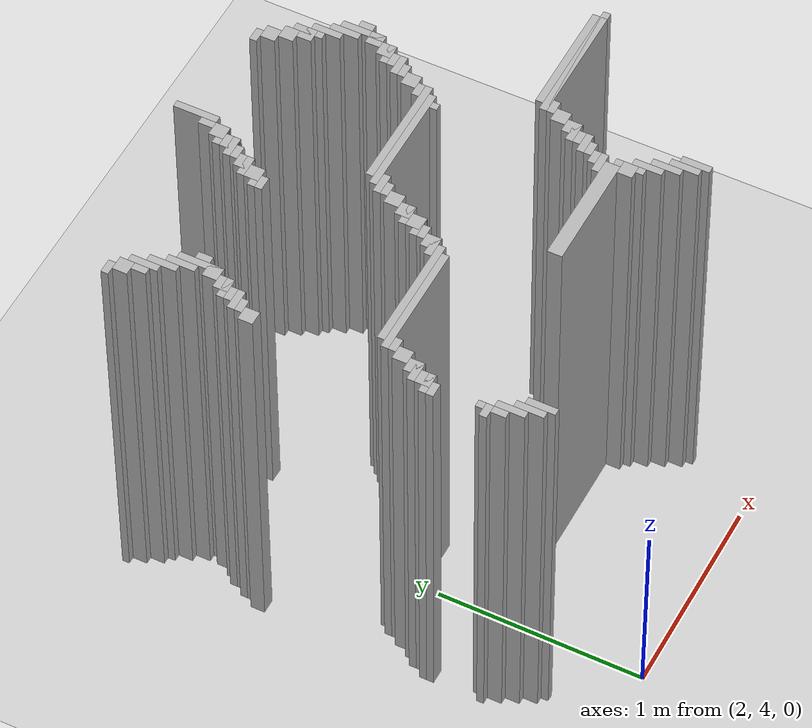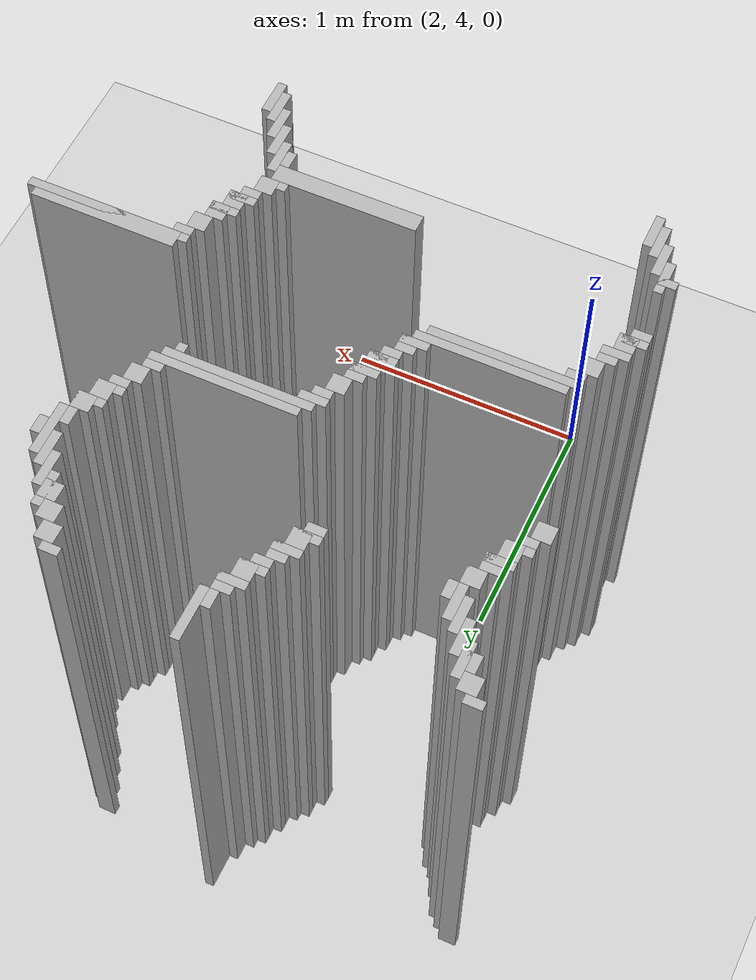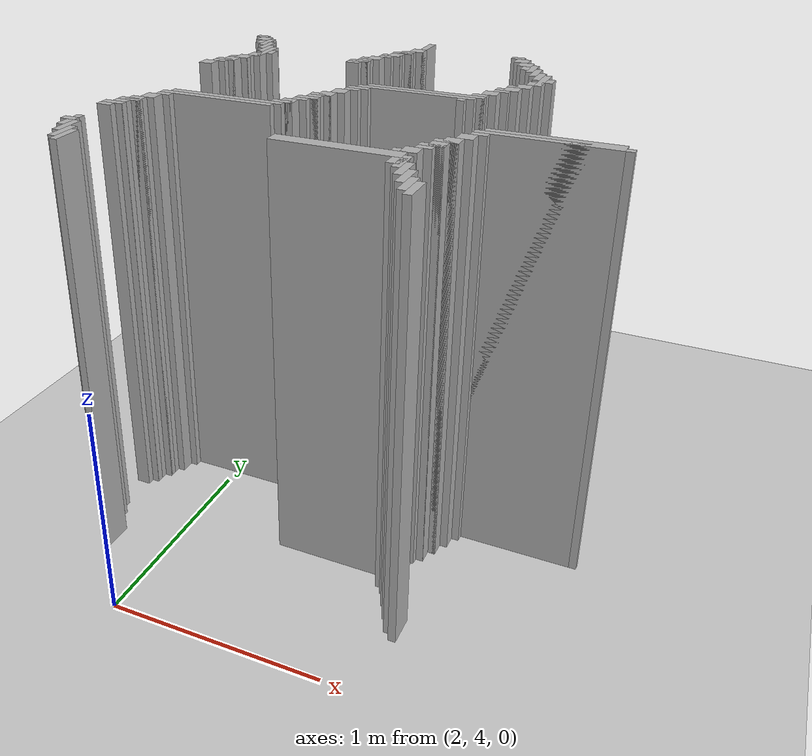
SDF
<sdf version="1.6">
 <world name="slam_world">
  <model name="ground_plane">
   <static>true</static>
   <link name="link">
    <collision name="collision">
     <geometry><plane><normal>0 0 1</normal><size>100 100</size></plane></geometry>
    </collision>
    <visual name="visual">
     <geometry><plane><normal>0 0 1</normal><size>100 100</size></plane></geometry>
     <material>
      <ambient>0.8 0.8 0.8 1</ambient>
      <diffuse>0.8 0.8 0.8 1</diffuse>
      <specular>0.8 0.8 0.8 1</specular>
     </material>
    </visual>
   </link>
  </model>
  <model name="wall_3667">
   <static>true</static>
   <pose>2.488399071925754 6.403712296983758 1.0 0 0 0</pose>
   <link name="link">
    <collision name="collision">
     <geometry><box><size>0.03480278422273782 0.2088167053364269 2.0</size></box></geometry>
    </collision>
    <visual name="visual">
     <geometry><box><size>0.03480278422273782 0.2088167053364269 2.0</size></box></geometry>
     <material><ambient>0.5 0.5 0.5 1</ambient><diffuse>0.7 0.7 0.7 1</diffuse></material>
    </visual>
   </link>
  </model>
  <model name="wall_3703">
   <static>true</static>
   <pose>2.9930394431554523 6.386310904872389 1.0 0 0 0</pose>
   <link name="link">
    <collision name="collision">
     <geometry><box><size>0.06960556844547564 0.03480278422273782 2.0</size></box></geometry>
    </collision>
    <visual name="visual">
     <geometry><box><size>0.06960556844547564 0.03480278422273782 2.0</size></box></geometry>
     <material><ambient>0.5 0.5 0.5 1</ambient><diffuse>0.7 0.7 0.7 1</diffuse></material>
    </visual>
   </link>
  </model>
  <model name="wall_3712">
   <static>true</static>
   <pose>2.470997679814385 6.334106728538282 1.0 0 0 0</pose>
   <link name="link">
    <collision name="collision">
     <geometry><box><size>0.06960556844547564 0.06960556844547564 2.0</size></box></geometry>
    </collision>
    <visual name="visual">
     <geometry><box><size>0.06960556844547564 0.06960556844547564 2.0</size></box></geometry>
     <material><ambient>0.5 0.5 0.5 1</ambient><diffuse>0.7 0.7 0.7 1</diffuse></material>
    </visual>
   </link>
  </model>
  <model name="wall_3713">
   <static>true</static>
   <pose>3.02784222737819 6.334106728538282 1.0 0 0 0</pose>
   <link name="link">
    <collision name="collision">
     <geometry><box><size>0.06960556844547564 0.06960556844547564 2.0</size></box></geometry>
    </collision>
    <visual name="visual">
     <geometry><box><size>0.06960556844547564 0.06960556844547564 2.0</size></box></geometry>
     <material><ambient>0.5 0.5 0.5 1</ambient><diffuse>0.7 0.7 0.7 1</diffuse></material>
    </visual>
   </link>
  </model>
  <model name="wall_3728">
   <static>true</static>
   <pose>1.5661252900232019 6.316705336426914 1.0 0 0 0</pose>
   <link name="link">
    <collision name="collision">
     <geometry><box><size>0.06960556844547564 0.03480278422273782 2.0</size></box></geometry>
    </collision>
    <visual name="visual">
     <geometry><box><size>0.06960556844547564 0.03480278422273782 2.0</size></box></geometry>
     <material><ambient>0.5 0.5 0.5 1</ambient><diffuse>0.7 0.7 0.7 1</diffuse></material>
    </visual>
   </link>
  </model>
  <model name="wall_3738">
   <static>true</static>
   <pose>1.6009280742459395 6.2645011600928076 1.0 0 0 0</pose>
   <link name="link">
    <collision name="collision">
     <geometry><box><size>0.06960556844547564 0.06960556844547564 2.0</size></box></geometry>
    </collision>
    <visual name="visual">
     <geometry><box><size>0.06960556844547564 0.06960556844547564 2.0</size></box></geometry>
     <material><ambient>0.5 0.5 0.5 1</ambient><diffuse>0.7 0.7 0.7 1</diffuse></material>
    </visual>
   </link>
  </model>
  <model name="wall_3739">
   <static>true</static>
   <pose>2.436194895591647 6.2645011600928076 1.0 0 0 0</pose>
   <link name="link">
    <collision name="collision">
     <geometry><box><size>0.06960556844547564 0.06960556844547564 2.0</size></box></geometry>
    </collision>
    <visual name="visual">
     <geometry><box><size>0.06960556844547564 0.06960556844547564 2.0</size></box></geometry>
     <material><ambient>0.5 0.5 0.5 1</ambient><diffuse>0.7 0.7 0.7 1</diffuse></material>
    </visual>
   </link>
  </model>
  <model name="wall_3740">
   <static>true</static>
   <pose>3.062645011600928 6.2645011600928076 1.0 0 0 0</pose>
   <link name="link">
    <collision name="collision">
     <geometry><box><size>0.06960556844547564 0.06960556844547564 2.0</size></box></geometry>
    </collision>
    <visual name="visual">
     <geometry><box><size>0.06960556844547564 0.06960556844547564 2.0</size></box></geometry>
     <material><ambient>0.5 0.5 0.5 1</ambient><diffuse>0.7 0.7 0.7 1</diffuse></material>
    </visual>
   </link>
  </model>
  <model name="wall_3756">
   <static>true</static>
   <pose>1.6531322505800463 6.194895591647332 1.0 0 0 0</pose>
   <link name="link">
    <collision name="collision">
     <geometry><box><size>0.03480278422273782 0.13921113689095127 2.0</size></box></geometry>
    </collision>
    <visual name="visual">
     <geometry><box><size>0.03480278422273782 0.13921113689095127 2.0</size></box></geometry>
     <material><ambient>0.5 0.5 0.5 1</ambient><diffuse>0.7 0.7 0.7 1</diffuse></material>
    </visual>
   </link>
  </model>
  <model name="wall_3757">
   <static>true</static>
   <pose>2.4187935034802783 6.247099767981438 1.0 0 0 0</pose>
   <link name="link">
    <collision name="collision">
     <geometry><box><size>0.10440835266821345 0.03480278422273782 2.0</size></box></geometry>
    </collision>
    <visual name="visual">
     <geometry><box><size>0.10440835266821345 0.03480278422273782 2.0</size></box></geometry>
     <material><ambient>0.5 0.5 0.5 1</ambient><diffuse>0.7 0.7 0.7 1</diffuse></material>
    </visual>
   </link>
  </model>
  <model name="wall_3758">
   <static>true</static>
   <pose>3.1148491879350346 6.194895591647332 1.0 0 0 0</pose>
   <link name="link">
    <collision name="collision">
     <geometry><box><size>0.03480278422273782 0.13921113689095127 2.0</size></box></geometry>
    </collision>
    <visual name="visual">
     <geometry><box><size>0.03480278422273782 0.13921113689095127 2.0</size></box></geometry>
     <material><ambient>0.5 0.5 0.5 1</ambient><diffuse>0.7 0.7 0.7 1</diffuse></material>
    </visual>
   </link>
  </model>
  <model name="wall_3774">
   <static>true</static>
   <pose>1.6357308584686774 6.194895591647332 1.0 0 0 0</pose>
   <link name="link">
    <collision name="collision">
     <geometry><box><size>0.06960556844547564 0.06960556844547564 2.0</size></box></geometry>
    </collision>
    <visual name="visual">
     <geometry><box><size>0.06960556844547564 0.06960556844547564 2.0</size></box></geometry>
     <material><ambient>0.5 0.5 0.5 1</ambient><diffuse>0.7 0.7 0.7 1</diffuse></material>
    </visual>
   </link>
  </model>
  <model name="wall_3775">
   <static>true</static>
   <pose>2.4013921113689096 6.194895591647332 1.0 0 0 0</pose>
   <link name="link">
    <collision name="collision">
     <geometry><box><size>0.06960556844547564 0.06960556844547564 2.0</size></box></geometry>
    </collision>
    <visual name="visual">
     <geometry><box><size>0.06960556844547564 0.06960556844547564 2.0</size></box></geometry>
     <material><ambient>0.5 0.5 0.5 1</ambient><diffuse>0.7 0.7 0.7 1</diffuse></material>
    </visual>
   </link>
  </model>
  <model name="wall_3776">
   <static>true</static>
   <pose>3.097447795823666 6.194895591647332 1.0 0 0 0</pose>
   <link name="link">
    <collision name="collision">
     <geometry><box><size>0.06960556844547564 0.06960556844547564 2.0</size></box></geometry>
    </collision>
    <visual name="visual">
     <geometry><box><size>0.06960556844547564 0.06960556844547564 2.0</size></box></geometry>
     <material><ambient>0.5 0.5 0.5 1</ambient><diffuse>0.7 0.7 0.7 1</diffuse></material>
    </visual>
   </link>
  </model>
  <model name="wall_3792">
   <static>true</static>
   <pose>1.6879350348027842 6.125290023201856 1.0 0 0 0</pose>
   <link name="link">
    <collision name="collision">
     <geometry><box><size>0.03480278422273782 0.13921113689095127 2.0</size></box></geometry>
    </collision>
    <visual name="visual">
     <geometry><box><size>0.03480278422273782 0.13921113689095127 2.0</size></box></geometry>
     <material><ambient>0.5 0.5 0.5 1</ambient><diffuse>0.7 0.7 0.7 1</diffuse></material>
    </visual>
   </link>
  </model>
  <model name="wall_3793">
   <static>true</static>
   <pose>2.3839907192575405 6.177494199535962 1.0 0 0 0</pose>
   <link name="link">
    <collision name="collision">
     <geometry><box><size>0.10440835266821345 0.03480278422273782 2.0</size></box></geometry>
    </collision>
    <visual name="visual">
     <geometry><box><size>0.10440835266821345 0.03480278422273782 2.0</size></box></geometry>
     <material><ambient>0.5 0.5 0.5 1</ambient><diffuse>0.7 0.7 0.7 1</diffuse></material>
    </visual>
   </link>
  </model>
  <model name="wall_3794">
   <static>true</static>
   <pose>3.1496519721577725 6.125290023201856 1.0 0 0 0</pose>
   <link name="link">
    <collision name="collision">
     <geometry><box><size>0.03480278422273782 0.13921113689095127 2.0</size></box></geometry>
    </collision>
    <visual name="visual">
     <geometry><box><size>0.03480278422273782 0.13921113689095127 2.0</size></box></geometry>
     <material><ambient>0.5 0.5 0.5 1</ambient><diffuse>0.7 0.7 0.7 1</diffuse></material>
    </visual>
   </link>
  </model>
  <model name="wall_3809">
   <static>true</static>
   <pose>2.3665893271461718 6.142691415313225 1.0 0 0 0</pose>
   <link name="link">
    <collision name="collision">
     <geometry><box><size>0.06960556844547564 0.03480278422273782 2.0</size></box></geometry>
    </collision>
    <visual name="visual">
     <geometry><box><size>0.06960556844547564 0.03480278422273782 2.0</size></box></geometry>
     <material><ambient>0.5 0.5 0.5 1</ambient><diffuse>0.7 0.7 0.7 1</diffuse></material>
    </visual>
   </link>
  </model>
  <model name="wall_3819">
   <static>true</static>
   <pose>1.722737819025522 6.05568445475638 1.0 0 0 0</pose>
   <link name="link">
    <collision name="collision">
     <geometry><box><size>0.03480278422273782 0.13921113689095127 2.0</size></box></geometry>
    </collision>
    <visual name="visual">
     <geometry><box><size>0.03480278422273782 0.13921113689095127 2.0</size></box></geometry>
     <material><ambient>0.5 0.5 0.5 1</ambient><diffuse>0.7 0.7 0.7 1</diffuse></material>
    </visual>
   </link>
  </model>
  <model name="wall_3820">
   <static>true</static>
   <pose>2.331786542923434 6.090487238979118 1.0 0 0 0</pose>
   <link name="link">
    <collision name="collision">
     <geometry><box><size>0.06960556844547564 0.06960556844547564 2.0</size></box></geometry>
    </collision>
    <visual name="visual">
     <geometry><box><size>0.06960556844547564 0.06960556844547564 2.0</size></box></geometry>
     <material><ambient>0.5 0.5 0.5 1</ambient><diffuse>0.7 0.7 0.7 1</diffuse></material>
    </visual>
   </link>
  </model>
  <model name="wall_3821">
   <static>true</static>
   <pose>3.1844547563805103 6.05568445475638 1.0 0 0 0</pose>
   <link name="link">
    <collision name="collision">
     <geometry><box><size>0.03480278422273782 0.13921113689095127 2.0</size></box></geometry>
    </collision>
    <visual name="visual">
     <geometry><box><size>0.03480278422273782 0.13921113689095127 2.0</size></box></geometry>
     <material><ambient>0.5 0.5 0.5 1</ambient><diffuse>0.7 0.7 0.7 1</diffuse></material>
    </visual>
   </link>
  </model>
  <model name="wall_3837">
   <static>true</static>
   <pose>1.75754060324826 5.986078886310905 1.0 0 0 0</pose>
   <link name="link">
    <collision name="collision">
     <geometry><box><size>0.03480278422273782 0.2088167053364269 2.0</size></box></geometry>
    </collision>
    <visual name="visual">
     <geometry><box><size>0.03480278422273782 0.2088167053364269 2.0</size></box></geometry>
     <material><ambient>0.5 0.5 0.5 1</ambient><diffuse>0.7 0.7 0.7 1</diffuse></material>
    </visual>
   </link>
  </model>
  <model name="wall_3838">
   <static>true</static>
   <pose>2.3143851508120648 6.073085846867749 1.0 0 0 0</pose>
   <link name="link">
    <collision name="collision">
     <geometry><box><size>0.10440835266821345 0.03480278422273782 2.0</size></box></geometry>
    </collision>
    <visual name="visual">
     <geometry><box><size>0.10440835266821345 0.03480278422273782 2.0</size></box></geometry>
     <material><ambient>0.5 0.5 0.5 1</ambient><diffuse>0.7 0.7 0.7 1</diffuse></material>
    </visual>
   </link>
  </model>
  <model name="wall_3839">
   <static>true</static>
   <pose>3.219257540603248 5.986078886310905 1.0 0 0 0</pose>
   <link name="link">
    <collision name="collision">
     <geometry><box><size>0.03480278422273782 0.2088167053364269 2.0</size></box></geometry>
    </collision>
    <visual name="visual">
     <geometry><box><size>0.03480278422273782 0.2088167053364269 2.0</size></box></geometry>
     <material><ambient>0.5 0.5 0.5 1</ambient><diffuse>0.7 0.7 0.7 1</diffuse></material>
    </visual>
   </link>
  </model>
  <model name="wall_3854">
   <static>true</static>
   <pose>2.296983758700696 6.020881670533642 1.0 0 0 0</pose>
   <link name="link">
    <collision name="collision">
     <geometry><box><size>0.06960556844547564 0.06960556844547564 2.0</size></box></geometry>
    </collision>
    <visual name="visual">
     <geometry><box><size>0.06960556844547564 0.06960556844547564 2.0</size></box></geometry>
     <material><ambient>0.5 0.5 0.5 1</ambient><diffuse>0.7 0.7 0.7 1</diffuse></material>
    </visual>
   </link>
  </model>
  <model name="wall_3864">
   <static>true</static>
   <pose>1.7923433874709975 5.986078886310905 1.0 0 0 0</pose>
   <link name="link">
    <collision name="collision">
     <geometry><box><size>0.03480278422273782 0.06960556844547564 2.0</size></box></geometry>
    </collision>
    <visual name="visual">
     <geometry><box><size>0.03480278422273782 0.06960556844547564 2.0</size></box></geometry>
     <material><ambient>0.5 0.5 0.5 1</ambient><diffuse>0.7 0.7 0.7 1</diffuse></material>
    </visual>
   </link>
  </model>
  <model name="wall_3865">
   <static>true</static>
   <pose>2.279582366589327 6.003480278422273 1.0 0 0 0</pose>
   <link name="link">
    <collision name="collision">
     <geometry><box><size>0.10440835266821345 0.03480278422273782 2.0</size></box></geometry>
    </collision>
    <visual name="visual">
     <geometry><box><size>0.10440835266821345 0.03480278422273782 2.0</size></box></geometry>
     <material><ambient>0.5 0.5 0.5 1</ambient><diffuse>0.7 0.7 0.7 1</diffuse></material>
    </visual>
   </link>
  </model>
  <model name="wall_3866">
   <static>true</static>
   <pose>3.254060324825986 5.986078886310905 1.0 0 0 0</pose>
   <link name="link">
    <collision name="collision">
     <geometry><box><size>0.03480278422273782 0.06960556844547564 2.0</size></box></geometry>
    </collision>
    <visual name="visual">
     <geometry><box><size>0.03480278422273782 0.06960556844547564 2.0</size></box></geometry>
     <material><ambient>0.5 0.5 0.5 1</ambient><diffuse>0.7 0.7 0.7 1</diffuse></material>
    </visual>
   </link>
  </model>
  <model name="wall_3878">
   <static>true</static>
   <pose>2.262180974477958 5.968677494199536 1.0 0 0 0</pose>
   <link name="link">
    <collision name="collision">
     <geometry><box><size>0.06960556844547564 0.03480278422273782 2.0</size></box></geometry>
    </collision>
    <visual name="visual">
     <geometry><box><size>0.06960556844547564 0.03480278422273782 2.0</size></box></geometry>
     <material><ambient>0.5 0.5 0.5 1</ambient><diffuse>0.7 0.7 0.7 1</diffuse></material>
    </visual>
   </link>
  </model>
  <model name="wall_3888">
   <static>true</static>
   <pose>1.740139211136891 5.916473317865429 1.0 0 0 0</pose>
   <link name="link">
    <collision name="collision">
     <geometry><box><size>0.06960556844547564 0.06960556844547564 2.0</size></box></geometry>
    </collision>
    <visual name="visual">
     <geometry><box><size>0.06960556844547564 0.06960556844547564 2.0</size></box></geometry>
     <material><ambient>0.5 0.5 0.5 1</ambient><diffuse>0.7 0.7 0.7 1</diffuse></material>
    </visual>
   </link>
  </model>
  <model name="wall_3889">
   <static>true</static>
   <pose>3.201856148491879 5.916473317865429 1.0 0 0 0</pose>
   <link name="link">
    <collision name="collision">
     <geometry><box><size>0.06960556844547564 0.06960556844547564 2.0</size></box></geometry>
    </collision>
    <visual name="visual">
     <geometry><box><size>0.06960556844547564 0.06960556844547564 2.0</size></box></geometry>
     <material><ambient>0.5 0.5 0.5 1</ambient><diffuse>0.7 0.7 0.7 1</diffuse></material>
    </visual>
   </link>
  </model>
  <model name="wall_3904">
   <static>true</static>
   <pose>1.705336426914153 5.846867749419953 1.0 0 0 0</pose>
   <link name="link">
    <collision name="collision">
     <geometry><box><size>0.06960556844547564 0.06960556844547564 2.0</size></box></geometry>
    </collision>
    <visual name="visual">
     <geometry><box><size>0.06960556844547564 0.06960556844547564 2.0</size></box></geometry>
     <material><ambient>0.5 0.5 0.5 1</ambient><diffuse>0.7 0.7 0.7 1</diffuse></material>
    </visual>
   </link>
  </model>
  <model name="wall_3905">
   <static>true</static>
   <pose>3.167053364269141 5.846867749419953 1.0 0 0 0</pose>
   <link name="link">
    <collision name="collision">
     <geometry><box><size>0.06960556844547564 0.06960556844547564 2.0</size></box></geometry>
    </collision>
    <visual name="visual">
     <geometry><box><size>0.06960556844547564 0.06960556844547564 2.0</size></box></geometry>
     <material><ambient>0.5 0.5 0.5 1</ambient><diffuse>0.7 0.7 0.7 1</diffuse></material>
    </visual>
   </link>
  </model>
  <model name="wall_3915">
   <static>true</static>
   <pose>1.6879350348027842 5.8294663573085845 1.0 0 0 0</pose>
   <link name="link">
    <collision name="collision">
     <geometry><box><size>0.10440835266821345 0.03480278422273782 2.0</size></box></geometry>
    </collision>
    <visual name="visual">
     <geometry><box><size>0.10440835266821345 0.03480278422273782 2.0</size></box></geometry>
     <material><ambient>0.5 0.5 0.5 1</ambient><diffuse>0.7 0.7 0.7 1</diffuse></material>
    </visual>
   </link>
  </model>
  <model name="wall_3916">
   <static>true</static>
   <pose>3.1496519721577725 5.8294663573085845 1.0 0 0 0</pose>
   <link name="link">
    <collision name="collision">
     <geometry><box><size>0.10440835266821345 0.03480278422273782 2.0</size></box></geometry>
    </collision>
    <visual name="visual">
     <geometry><box><size>0.10440835266821345 0.03480278422273782 2.0</size></box></geometry>
     <material><ambient>0.5 0.5 0.5 1</ambient><diffuse>0.7 0.7 0.7 1</diffuse></material>
    </visual>
   </link>
  </model>
  <model name="wall_3926">
   <static>true</static>
   <pose>1.6705336426914152 5.7772621809744775 1.0 0 0 0</pose>
   <link name="link">
    <collision name="collision">
     <geometry><box><size>0.06960556844547564 0.06960556844547564 2.0</size></box></geometry>
    </collision>
    <visual name="visual">
     <geometry><box><size>0.06960556844547564 0.06960556844547564 2.0</size></box></geometry>
     <material><ambient>0.5 0.5 0.5 1</ambient><diffuse>0.7 0.7 0.7 1</diffuse></material>
    </visual>
   </link>
  </model>
  <model name="wall_3927">
   <static>true</static>
   <pose>3.1322505800464038 5.7772621809744775 1.0 0 0 0</pose>
   <link name="link">
    <collision name="collision">
     <geometry><box><size>0.06960556844547564 0.06960556844547564 2.0</size></box></geometry>
    </collision>
    <visual name="visual">
     <geometry><box><size>0.06960556844547564 0.06960556844547564 2.0</size></box></geometry>
     <material><ambient>0.5 0.5 0.5 1</ambient><diffuse>0.7 0.7 0.7 1</diffuse></material>
    </visual>
   </link>
  </model>
  <model name="wall_3937">
   <static>true</static>
   <pose>1.6531322505800463 5.759860788863109 1.0 0 0 0</pose>
   <link name="link">
    <collision name="collision">
     <geometry><box><size>0.10440835266821345 0.03480278422273782 2.0</size></box></geometry>
    </collision>
    <visual name="visual">
     <geometry><box><size>0.10440835266821345 0.03480278422273782 2.0</size></box></geometry>
     <material><ambient>0.5 0.5 0.5 1</ambient><diffuse>0.7 0.7 0.7 1</diffuse></material>
    </visual>
   </link>
  </model>
  <model name="wall_3938">
   <static>true</static>
   <pose>3.1148491879350346 5.759860788863109 1.0 0 0 0</pose>
   <link name="link">
    <collision name="collision">
     <geometry><box><size>0.10440835266821345 0.03480278422273782 2.0</size></box></geometry>
    </collision>
    <visual name="visual">
     <geometry><box><size>0.10440835266821345 0.03480278422273782 2.0</size></box></geometry>
     <material><ambient>0.5 0.5 0.5 1</ambient><diffuse>0.7 0.7 0.7 1</diffuse></material>
    </visual>
   </link>
  </model>
  <model name="wall_3948">
   <static>true</static>
   <pose>1.6357308584686774 5.725058004640371 1.0 0 0 0</pose>
   <link name="link">
    <collision name="collision">
     <geometry><box><size>0.06960556844547564 0.03480278422273782 2.0</size></box></geometry>
    </collision>
    <visual name="visual">
     <geometry><box><size>0.06960556844547564 0.03480278422273782 2.0</size></box></geometry>
     <material><ambient>0.5 0.5 0.5 1</ambient><diffuse>0.7 0.7 0.7 1</diffuse></material>
    </visual>
   </link>
  </model>
  <model name="wall_3949">
   <static>true</static>
   <pose>3.097447795823666 5.725058004640371 1.0 0 0 0</pose>
   <link name="link">
    <collision name="collision">
     <geometry><box><size>0.06960556844547564 0.03480278422273782 2.0</size></box></geometry>
    </collision>
    <visual name="visual">
     <geometry><box><size>0.06960556844547564 0.03480278422273782 2.0</size></box></geometry>
     <material><ambient>0.5 0.5 0.5 1</ambient><diffuse>0.7 0.7 0.7 1</diffuse></material>
    </visual>
   </link>
  </model>
  <model name="wall_3957">
   <static>true</static>
   <pose>1.6009280742459395 5.672853828306264 1.0 0 0 0</pose>
   <link name="link">
    <collision name="collision">
     <geometry><box><size>0.06960556844547564 0.06960556844547564 2.0</size></box></geometry>
    </collision>
    <visual name="visual">
     <geometry><box><size>0.06960556844547564 0.06960556844547564 2.0</size></box></geometry>
     <material><ambient>0.5 0.5 0.5 1</ambient><diffuse>0.7 0.7 0.7 1</diffuse></material>
    </visual>
   </link>
  </model>
  <model name="wall_3958">
   <static>true</static>
   <pose>3.062645011600928 5.672853828306264 1.0 0 0 0</pose>
   <link name="link">
    <collision name="collision">
     <geometry><box><size>0.06960556844547564 0.06960556844547564 2.0</size></box></geometry>
    </collision>
    <visual name="visual">
     <geometry><box><size>0.06960556844547564 0.06960556844547564 2.0</size></box></geometry>
     <material><ambient>0.5 0.5 0.5 1</ambient><diffuse>0.7 0.7 0.7 1</diffuse></material>
    </visual>
   </link>
  </model>
  <model name="wall_3969">
   <static>true</static>
   <pose>3.02784222737819 5.603248259860789 1.0 0 0 0</pose>
   <link name="link">
    <collision name="collision">
     <geometry><box><size>0.06960556844547564 0.06960556844547564 2.0</size></box></geometry>
    </collision>
    <visual name="visual">
     <geometry><box><size>0.06960556844547564 0.06960556844547564 2.0</size></box></geometry>
     <material><ambient>0.5 0.5 0.5 1</ambient><diffuse>0.7 0.7 0.7 1</diffuse></material>
    </visual>
   </link>
  </model>
  <model name="wall_3980">
   <static>true</static>
   <pose>2.784222737819025 5.58584686774942 1.0 0 0 0</pose>
   <link name="link">
    <collision name="collision">
     <geometry><box><size>0.5568445475638051 0.03480278422273782 2.0</size></box></geometry>
    </collision>
    <visual name="visual">
     <geometry><box><size>0.5568445475638051 0.03480278422273782 2.0</size></box></geometry>
     <material><ambient>0.5 0.5 0.5 1</ambient><diffuse>0.7 0.7 0.7 1</diffuse></material>
    </visual>
   </link>
  </model>
  <model name="wall_3993">
   <static>true</static>
   <pose>2.7494199535962878 5.551044083526682 1.0 0 0 0</pose>
   <link name="link">
    <collision name="collision">
     <geometry><box><size>0.5568445475638051 0.03480278422273782 2.0</size></box></geometry>
    </collision>
    <visual name="visual">
     <geometry><box><size>0.5568445475638051 0.03480278422273782 2.0</size></box></geometry>
     <material><ambient>0.5 0.5 0.5 1</ambient><diffuse>0.7 0.7 0.7 1</diffuse></material>
    </visual>
   </link>
  </model>
  <model name="wall_4006">
   <static>true</static>
   <pose>2.488399071925754 5.516241299303944 1.0 0 0 0</pose>
   <link name="link">
    <collision name="collision">
     <geometry><box><size>0.10440835266821345 0.03480278422273782 2.0</size></box></geometry>
    </collision>
    <visual name="visual">
     <geometry><box><size>0.10440835266821345 0.03480278422273782 2.0</size></box></geometry>
     <material><ambient>0.5 0.5 0.5 1</ambient><diffuse>0.7 0.7 0.7 1</diffuse></material>
    </visual>
   </link>
  </model>
  <model name="wall_4007">
   <static>true</static>
   <pose>2.975638051044083 5.516241299303944 1.0 0 0 0</pose>
   <link name="link">
    <collision name="collision">
     <geometry><box><size>0.03480278422273782 0.03480278422273782 2.0</size></box></geometry>
    </collision>
    <visual name="visual">
     <geometry><box><size>0.03480278422273782 0.03480278422273782 2.0</size></box></geometry>
     <material><ambient>0.5 0.5 0.5 1</ambient><diffuse>0.7 0.7 0.7 1</diffuse></material>
    </visual>
   </link>
  </model>
  <model name="wall_4024">
   <static>true</static>
   <pose>2.470997679814385 5.481438515081206 1.0 0 0 0</pose>
   <link name="link">
    <collision name="collision">
     <geometry><box><size>0.06960556844547564 0.03480278422273782 2.0</size></box></geometry>
    </collision>
    <visual name="visual">
     <geometry><box><size>0.06960556844547564 0.03480278422273782 2.0</size></box></geometry>
     <material><ambient>0.5 0.5 0.5 1</ambient><diffuse>0.7 0.7 0.7 1</diffuse></material>
    </visual>
   </link>
  </model>
  <model name="wall_4039">
   <static>true</static>
   <pose>2.436194895591647 5.4292343387471 1.0 0 0 0</pose>
   <link name="link">
    <collision name="collision">
     <geometry><box><size>0.06960556844547564 0.06960556844547564 2.0</size></box></geometry>
    </collision>
    <visual name="visual">
     <geometry><box><size>0.06960556844547564 0.06960556844547564 2.0</size></box></geometry>
     <material><ambient>0.5 0.5 0.5 1</ambient><diffuse>0.7 0.7 0.7 1</diffuse></material>
    </visual>
   </link>
  </model>
  <model name="wall_4054">
   <static>true</static>
   <pose>2.4013921113689096 5.359628770301624 1.0 0 0 0</pose>
   <link name="link">
    <collision name="collision">
     <geometry><box><size>0.06960556844547564 0.06960556844547564 2.0</size></box></geometry>
    </collision>
    <visual name="visual">
     <geometry><box><size>0.06960556844547564 0.06960556844547564 2.0</size></box></geometry>
     <material><ambient>0.5 0.5 0.5 1</ambient><diffuse>0.7 0.7 0.7 1</diffuse></material>
    </visual>
   </link>
  </model>
  <model name="wall_4069">
   <static>true</static>
   <pose>2.3839907192575405 5.342227378190255 1.0 0 0 0</pose>
   <link name="link">
    <collision name="collision">
     <geometry><box><size>0.10440835266821345 0.03480278422273782 2.0</size></box></geometry>
    </collision>
    <visual name="visual">
     <geometry><box><size>0.10440835266821345 0.03480278422273782 2.0</size></box></geometry>
     <material><ambient>0.5 0.5 0.5 1</ambient><diffuse>0.7 0.7 0.7 1</diffuse></material>
    </visual>
   </link>
  </model>
  <model name="wall_4083">
   <static>true</static>
   <pose>2.3665893271461718 5.290023201856148 1.0 0 0 0</pose>
   <link name="link">
    <collision name="collision">
     <geometry><box><size>0.06960556844547564 0.06960556844547564 2.0</size></box></geometry>
    </collision>
    <visual name="visual">
     <geometry><box><size>0.06960556844547564 0.06960556844547564 2.0</size></box></geometry>
     <material><ambient>0.5 0.5 0.5 1</ambient><diffuse>0.7 0.7 0.7 1</diffuse></material>
    </visual>
   </link>
  </model>
  <model name="wall_4095">
   <static>true</static>
   <pose>2.3491879350348026 5.27262180974478 1.0 0 0 0</pose>
   <link name="link">
    <collision name="collision">
     <geometry><box><size>0.10440835266821345 0.03480278422273782 2.0</size></box></geometry>
    </collision>
    <visual name="visual">
     <geometry><box><size>0.10440835266821345 0.03480278422273782 2.0</size></box></geometry>
     <material><ambient>0.5 0.5 0.5 1</ambient><diffuse>0.7 0.7 0.7 1</diffuse></material>
    </visual>
   </link>
  </model>
  <model name="wall_4109">
   <static>true</static>
   <pose>2.331786542923434 5.237819025522041 1.0 0 0 0</pose>
   <link name="link">
    <collision name="collision">
     <geometry><box><size>0.06960556844547564 0.03480278422273782 2.0</size></box></geometry>
    </collision>
    <visual name="visual">
     <geometry><box><size>0.06960556844547564 0.03480278422273782 2.0</size></box></geometry>
     <material><ambient>0.5 0.5 0.5 1</ambient><diffuse>0.7 0.7 0.7 1</diffuse></material>
    </visual>
   </link>
  </model>
  <model name="wall_4118">
   <static>true</static>
   <pose>2.296983758700696 5.185614849187935 1.0 0 0 0</pose>
   <link name="link">
    <collision name="collision">
     <geometry><box><size>0.06960556844547564 0.06960556844547564 2.0</size></box></geometry>
    </collision>
    <visual name="visual">
     <geometry><box><size>0.06960556844547564 0.06960556844547564 2.0</size></box></geometry>
     <material><ambient>0.5 0.5 0.5 1</ambient><diffuse>0.7 0.7 0.7 1</diffuse></material>
    </visual>
   </link>
  </model>
  <model name="wall_4133">
   <static>true</static>
   <pose>2.279582366589327 5.168213457076566 1.0 0 0 0</pose>
   <link name="link">
    <collision name="collision">
     <geometry><box><size>0.10440835266821345 0.03480278422273782 2.0</size></box></geometry>
    </collision>
    <visual name="visual">
     <geometry><box><size>0.10440835266821345 0.03480278422273782 2.0</size></box></geometry>
     <material><ambient>0.5 0.5 0.5 1</ambient><diffuse>0.7 0.7 0.7 1</diffuse></material>
    </visual>
   </link>
  </model>
  <model name="wall_4147">
   <static>true</static>
   <pose>2.0185614849187936 5.133410672853828 1.0 0 0 0</pose>
   <link name="link">
    <collision name="collision">
     <geometry><box><size>0.5568445475638051 0.03480278422273782 2.0</size></box></geometry>
    </collision>
    <visual name="visual">
     <geometry><box><size>0.5568445475638051 0.03480278422273782 2.0</size></box></geometry>
     <material><ambient>0.5 0.5 0.5 1</ambient><diffuse>0.7 0.7 0.7 1</diffuse></material>
    </visual>
   </link>
  </model>
  <model name="wall_4148">
   <static>true</static>
   <pose>3.480278422273782 5.1160092807424595 1.0 0 0 0</pose>
   <link name="link">
    <collision name="collision">
     <geometry><box><size>0.5568445475638051 0.06960556844547564 2.0</size></box></geometry>
    </collision>
    <visual name="visual">
     <geometry><box><size>0.5568445475638051 0.06960556844547564 2.0</size></box></geometry>
     <material><ambient>0.5 0.5 0.5 1</ambient><diffuse>0.7 0.7 0.7 1</diffuse></material>
    </visual>
   </link>
  </model>
  <model name="wall_4158">
   <static>true</static>
   <pose>1.9837587006960555 5.09860788863109 1.0 0 0 0</pose>
   <link name="link">
    <collision name="collision">
     <geometry><box><size>0.5568445475638051 0.03480278422273782 2.0</size></box></geometry>
    </collision>
    <visual name="visual">
     <geometry><box><size>0.5568445475638051 0.03480278422273782 2.0</size></box></geometry>
     <material><ambient>0.5 0.5 0.5 1</ambient><diffuse>0.7 0.7 0.7 1</diffuse></material>
    </visual>
   </link>
  </model>
  <model name="wall_4159">
   <static>true</static>
   <pose>3.480278422273782 5.09860788863109 1.0 0 0 0</pose>
   <link name="link">
    <collision name="collision">
     <geometry><box><size>0.6264501160092807 0.03480278422273782 2.0</size></box></geometry>
    </collision>
    <visual name="visual">
     <geometry><box><size>0.6264501160092807 0.03480278422273782 2.0</size></box></geometry>
     <material><ambient>0.5 0.5 0.5 1</ambient><diffuse>0.7 0.7 0.7 1</diffuse></material>
    </visual>
   </link>
  </model>
  <model name="wall_4171">
   <static>true</static>
   <pose>1.740139211136891 5.0638051044083525 1.0 0 0 0</pose>
   <link name="link">
    <collision name="collision">
     <geometry><box><size>0.06960556844547564 0.03480278422273782 2.0</size></box></geometry>
    </collision>
    <visual name="visual">
     <geometry><box><size>0.06960556844547564 0.03480278422273782 2.0</size></box></geometry>
     <material><ambient>0.5 0.5 0.5 1</ambient><diffuse>0.7 0.7 0.7 1</diffuse></material>
    </visual>
   </link>
  </model>
  <model name="wall_4172">
   <static>true</static>
   <pose>3.201856148491879 5.0638051044083525 1.0 0 0 0</pose>
   <link name="link">
    <collision name="collision">
     <geometry><box><size>0.06960556844547564 0.03480278422273782 2.0</size></box></geometry>
    </collision>
    <visual name="visual">
     <geometry><box><size>0.06960556844547564 0.03480278422273782 2.0</size></box></geometry>
     <material><ambient>0.5 0.5 0.5 1</ambient><diffuse>0.7 0.7 0.7 1</diffuse></material>
    </visual>
   </link>
  </model>
  <model name="wall_4186">
   <static>true</static>
   <pose>1.705336426914153 5.0116009280742455 1.0 0 0 0</pose>
   <link name="link">
    <collision name="collision">
     <geometry><box><size>0.06960556844547564 0.06960556844547564 2.0</size></box></geometry>
    </collision>
    <visual name="visual">
     <geometry><box><size>0.06960556844547564 0.06960556844547564 2.0</size></box></geometry>
     <material><ambient>0.5 0.5 0.5 1</ambient><diffuse>0.7 0.7 0.7 1</diffuse></material>
    </visual>
   </link>
  </model>
  <model name="wall_4187">
   <static>true</static>
   <pose>3.167053364269141 5.0116009280742455 1.0 0 0 0</pose>
   <link name="link">
    <collision name="collision">
     <geometry><box><size>0.06960556844547564 0.06960556844547564 2.0</size></box></geometry>
    </collision>
    <visual name="visual">
     <geometry><box><size>0.06960556844547564 0.06960556844547564 2.0</size></box></geometry>
     <material><ambient>0.5 0.5 0.5 1</ambient><diffuse>0.7 0.7 0.7 1</diffuse></material>
    </visual>
   </link>
  </model>
  <model name="wall_4201">
   <static>true</static>
   <pose>1.6705336426914152 4.94199535962877 1.0 0 0 0</pose>
   <link name="link">
    <collision name="collision">
     <geometry><box><size>0.06960556844547564 0.06960556844547564 2.0</size></box></geometry>
    </collision>
    <visual name="visual">
     <geometry><box><size>0.06960556844547564 0.06960556844547564 2.0</size></box></geometry>
     <material><ambient>0.5 0.5 0.5 1</ambient><diffuse>0.7 0.7 0.7 1</diffuse></material>
    </visual>
   </link>
  </model>
  <model name="wall_4202">
   <static>true</static>
   <pose>3.1322505800464038 4.94199535962877 1.0 0 0 0</pose>
   <link name="link">
    <collision name="collision">
     <geometry><box><size>0.06960556844547564 0.06960556844547564 2.0</size></box></geometry>
    </collision>
    <visual name="visual">
     <geometry><box><size>0.06960556844547564 0.06960556844547564 2.0</size></box></geometry>
     <material><ambient>0.5 0.5 0.5 1</ambient><diffuse>0.7 0.7 0.7 1</diffuse></material>
    </visual>
   </link>
  </model>
  <model name="wall_4216">
   <static>true</static>
   <pose>1.6531322505800463 4.924593967517401 1.0 0 0 0</pose>
   <link name="link">
    <collision name="collision">
     <geometry><box><size>0.10440835266821345 0.03480278422273782 2.0</size></box></geometry>
    </collision>
    <visual name="visual">
     <geometry><box><size>0.10440835266821345 0.03480278422273782 2.0</size></box></geometry>
     <material><ambient>0.5 0.5 0.5 1</ambient><diffuse>0.7 0.7 0.7 1</diffuse></material>
    </visual>
   </link>
  </model>
  <model name="wall_4217">
   <static>true</static>
   <pose>3.1148491879350346 4.924593967517401 1.0 0 0 0</pose>
   <link name="link">
    <collision name="collision">
     <geometry><box><size>0.10440835266821345 0.03480278422273782 2.0</size></box></geometry>
    </collision>
    <visual name="visual">
     <geometry><box><size>0.10440835266821345 0.03480278422273782 2.0</size></box></geometry>
     <material><ambient>0.5 0.5 0.5 1</ambient><diffuse>0.7 0.7 0.7 1</diffuse></material>
    </visual>
   </link>
  </model>
  <model name="wall_4231">
   <static>true</static>
   <pose>1.6357308584686774 4.872389791183294 1.0 0 0 0</pose>
   <link name="link">
    <collision name="collision">
     <geometry><box><size>0.06960556844547564 0.06960556844547564 2.0</size></box></geometry>
    </collision>
    <visual name="visual">
     <geometry><box><size>0.06960556844547564 0.06960556844547564 2.0</size></box></geometry>
     <material><ambient>0.5 0.5 0.5 1</ambient><diffuse>0.7 0.7 0.7 1</diffuse></material>
    </visual>
   </link>
  </model>
  <model name="wall_4232">
   <static>true</static>
   <pose>3.097447795823666 4.872389791183294 1.0 0 0 0</pose>
   <link name="link">
    <collision name="collision">
     <geometry><box><size>0.06960556844547564 0.06960556844547564 2.0</size></box></geometry>
    </collision>
    <visual name="visual">
     <geometry><box><size>0.06960556844547564 0.06960556844547564 2.0</size></box></geometry>
     <material><ambient>0.5 0.5 0.5 1</ambient><diffuse>0.7 0.7 0.7 1</diffuse></material>
    </visual>
   </link>
  </model>
  <model name="wall_4242">
   <static>true</static>
   <pose>1.6183294663573085 4.854988399071925 1.0 0 0 0</pose>
   <link name="link">
    <collision name="collision">
     <geometry><box><size>0.10440835266821345 0.03480278422273782 2.0</size></box></geometry>
    </collision>
    <visual name="visual">
     <geometry><box><size>0.10440835266821345 0.03480278422273782 2.0</size></box></geometry>
     <material><ambient>0.5 0.5 0.5 1</ambient><diffuse>0.7 0.7 0.7 1</diffuse></material>
    </visual>
   </link>
  </model>
  <model name="wall_4243">
   <static>true</static>
   <pose>3.0800464037122968 4.854988399071925 1.0 0 0 0</pose>
   <link name="link">
    <collision name="collision">
     <geometry><box><size>0.10440835266821345 0.03480278422273782 2.0</size></box></geometry>
    </collision>
    <visual name="visual">
     <geometry><box><size>0.10440835266821345 0.03480278422273782 2.0</size></box></geometry>
     <material><ambient>0.5 0.5 0.5 1</ambient><diffuse>0.7 0.7 0.7 1</diffuse></material>
    </visual>
   </link>
  </model>
  <model name="wall_4257">
   <static>true</static>
   <pose>1.6009280742459395 4.820185614849188 1.0 0 0 0</pose>
   <link name="link">
    <collision name="collision">
     <geometry><box><size>0.06960556844547564 0.03480278422273782 2.0</size></box></geometry>
    </collision>
    <visual name="visual">
     <geometry><box><size>0.06960556844547564 0.03480278422273782 2.0</size></box></geometry>
     <material><ambient>0.5 0.5 0.5 1</ambient><diffuse>0.7 0.7 0.7 1</diffuse></material>
    </visual>
   </link>
  </model>
  <model name="wall_4258">
   <static>true</static>
   <pose>3.062645011600928 4.820185614849188 1.0 0 0 0</pose>
   <link name="link">
    <collision name="collision">
     <geometry><box><size>0.06960556844547564 0.03480278422273782 2.0</size></box></geometry>
    </collision>
    <visual name="visual">
     <geometry><box><size>0.06960556844547564 0.03480278422273782 2.0</size></box></geometry>
     <material><ambient>0.5 0.5 0.5 1</ambient><diffuse>0.7 0.7 0.7 1</diffuse></material>
    </visual>
   </link>
  </model>
  <model name="wall_4267">
   <static>true</static>
   <pose>3.02784222737819 4.767981438515081 1.0 0 0 0</pose>
   <link name="link">
    <collision name="collision">
     <geometry><box><size>0.06960556844547564 0.06960556844547564 2.0</size></box></geometry>
    </collision>
    <visual name="visual">
     <geometry><box><size>0.06960556844547564 0.06960556844547564 2.0</size></box></geometry>
     <material><ambient>0.5 0.5 0.5 1</ambient><diffuse>0.7 0.7 0.7 1</diffuse></material>
    </visual>
   </link>
  </model>
  <model name="wall_4281">
   <static>true</static>
   <pose>3.010440835266821 4.750580046403712 1.0 0 0 0</pose>
   <link name="link">
    <collision name="collision">
     <geometry><box><size>0.10440835266821345 0.03480278422273782 2.0</size></box></geometry>
    </collision>
    <visual name="visual">
     <geometry><box><size>0.10440835266821345 0.03480278422273782 2.0</size></box></geometry>
     <material><ambient>0.5 0.5 0.5 1</ambient><diffuse>0.7 0.7 0.7 1</diffuse></material>
    </visual>
   </link>
  </model>
  <model name="wall_4294">
   <static>true</static>
   <pose>2.7494199535962878 4.698375870069605 1.0 0 0 0</pose>
   <link name="link">
    <collision name="collision">
     <geometry><box><size>0.5568445475638051 0.06960556844547564 2.0</size></box></geometry>
    </collision>
    <visual name="visual">
     <geometry><box><size>0.5568445475638051 0.06960556844547564 2.0</size></box></geometry>
     <material><ambient>0.5 0.5 0.5 1</ambient><diffuse>0.7 0.7 0.7 1</diffuse></material>
    </visual>
   </link>
  </model>
  <model name="wall_4306">
   <static>true</static>
   <pose>3.045243619489559 4.6287703016241295 1.0 0 0 0</pose>
   <link name="link">
    <collision name="collision">
     <geometry><box><size>0.03480278422273782 0.13921113689095127 2.0</size></box></geometry>
    </collision>
    <visual name="visual">
     <geometry><box><size>0.03480278422273782 0.13921113689095127 2.0</size></box></geometry>
     <material><ambient>0.5 0.5 0.5 1</ambient><diffuse>0.7 0.7 0.7 1</diffuse></material>
    </visual>
   </link>
  </model>
  <model name="wall_4318">
   <static>true</static>
   <pose>3.02784222737819 4.6287703016241295 1.0 0 0 0</pose>
   <link name="link">
    <collision name="collision">
     <geometry><box><size>0.06960556844547564 0.06960556844547564 2.0</size></box></geometry>
    </collision>
    <visual name="visual">
     <geometry><box><size>0.06960556844547564 0.06960556844547564 2.0</size></box></geometry>
     <material><ambient>0.5 0.5 0.5 1</ambient><diffuse>0.7 0.7 0.7 1</diffuse></material>
    </visual>
   </link>
  </model>
  <model name="wall_4330">
   <static>true</static>
   <pose>1.6183294663573085 4.559164733178654 1.0 0 0 0</pose>
   <link name="link">
    <collision name="collision">
     <geometry><box><size>0.03480278422273782 0.13921113689095127 2.0</size></box></geometry>
    </collision>
    <visual name="visual">
     <geometry><box><size>0.03480278422273782 0.13921113689095127 2.0</size></box></geometry>
     <material><ambient>0.5 0.5 0.5 1</ambient><diffuse>0.7 0.7 0.7 1</diffuse></material>
    </visual>
   </link>
  </model>
  <model name="wall_4331">
   <static>true</static>
   <pose>3.0800464037122968 4.559164733178654 1.0 0 0 0</pose>
   <link name="link">
    <collision name="collision">
     <geometry><box><size>0.03480278422273782 0.13921113689095127 2.0</size></box></geometry>
    </collision>
    <visual name="visual">
     <geometry><box><size>0.03480278422273782 0.13921113689095127 2.0</size></box></geometry>
     <material><ambient>0.5 0.5 0.5 1</ambient><diffuse>0.7 0.7 0.7 1</diffuse></material>
    </visual>
   </link>
  </model>
  <model name="wall_4342">
   <static>true</static>
   <pose>1.6009280742459395 4.576566125290023 1.0 0 0 0</pose>
   <link name="link">
    <collision name="collision">
     <geometry><box><size>0.06960556844547564 0.03480278422273782 2.0</size></box></geometry>
    </collision>
    <visual name="visual">
     <geometry><box><size>0.06960556844547564 0.03480278422273782 2.0</size></box></geometry>
     <material><ambient>0.5 0.5 0.5 1</ambient><diffuse>0.7 0.7 0.7 1</diffuse></material>
    </visual>
   </link>
  </model>
  <model name="wall_4351">
   <static>true</static>
   <pose>1.6531322505800463 4.489559164733178 1.0 0 0 0</pose>
   <link name="link">
    <collision name="collision">
     <geometry><box><size>0.03480278422273782 0.13921113689095127 2.0</size></box></geometry>
    </collision>
    <visual name="visual">
     <geometry><box><size>0.03480278422273782 0.13921113689095127 2.0</size></box></geometry>
     <material><ambient>0.5 0.5 0.5 1</ambient><diffuse>0.7 0.7 0.7 1</diffuse></material>
    </visual>
   </link>
  </model>
  <model name="wall_4352">
   <static>true</static>
   <pose>3.1148491879350346 4.489559164733178 1.0 0 0 0</pose>
   <link name="link">
    <collision name="collision">
     <geometry><box><size>0.03480278422273782 0.13921113689095127 2.0</size></box></geometry>
    </collision>
    <visual name="visual">
     <geometry><box><size>0.03480278422273782 0.13921113689095127 2.0</size></box></geometry>
     <material><ambient>0.5 0.5 0.5 1</ambient><diffuse>0.7 0.7 0.7 1</diffuse></material>
    </visual>
   </link>
  </model>
  <model name="wall_4364">
   <static>true</static>
   <pose>1.6879350348027842 4.419953596287703 1.0 0 0 0</pose>
   <link name="link">
    <collision name="collision">
     <geometry><box><size>0.03480278422273782 0.13921113689095127 2.0</size></box></geometry>
    </collision>
    <visual name="visual">
     <geometry><box><size>0.03480278422273782 0.13921113689095127 2.0</size></box></geometry>
     <material><ambient>0.5 0.5 0.5 1</ambient><diffuse>0.7 0.7 0.7 1</diffuse></material>
    </visual>
   </link>
  </model>
  <model name="wall_4365">
   <static>true</static>
   <pose>3.1496519721577725 4.419953596287703 1.0 0 0 0</pose>
   <link name="link">
    <collision name="collision">
     <geometry><box><size>0.03480278422273782 0.13921113689095127 2.0</size></box></geometry>
    </collision>
    <visual name="visual">
     <geometry><box><size>0.03480278422273782 0.13921113689095127 2.0</size></box></geometry>
     <material><ambient>0.5 0.5 0.5 1</ambient><diffuse>0.7 0.7 0.7 1</diffuse></material>
    </visual>
   </link>
  </model>
  <model name="wall_4377">
   <static>true</static>
   <pose>1.722737819025522 4.385150812064965 1.0 0 0 0</pose>
   <link name="link">
    <collision name="collision">
     <geometry><box><size>0.03480278422273782 0.13921113689095127 2.0</size></box></geometry>
    </collision>
    <visual name="visual">
     <geometry><box><size>0.03480278422273782 0.13921113689095127 2.0</size></box></geometry>
     <material><ambient>0.5 0.5 0.5 1</ambient><diffuse>0.7 0.7 0.7 1</diffuse></material>
    </visual>
   </link>
  </model>
  <model name="wall_4378">
   <static>true</static>
   <pose>3.1844547563805103 4.385150812064965 1.0 0 0 0</pose>
   <link name="link">
    <collision name="collision">
     <geometry><box><size>0.03480278422273782 0.13921113689095127 2.0</size></box></geometry>
    </collision>
    <visual name="visual">
     <geometry><box><size>0.03480278422273782 0.13921113689095127 2.0</size></box></geometry>
     <material><ambient>0.5 0.5 0.5 1</ambient><diffuse>0.7 0.7 0.7 1</diffuse></material>
    </visual>
   </link>
  </model>
 </world>
</sdf>
